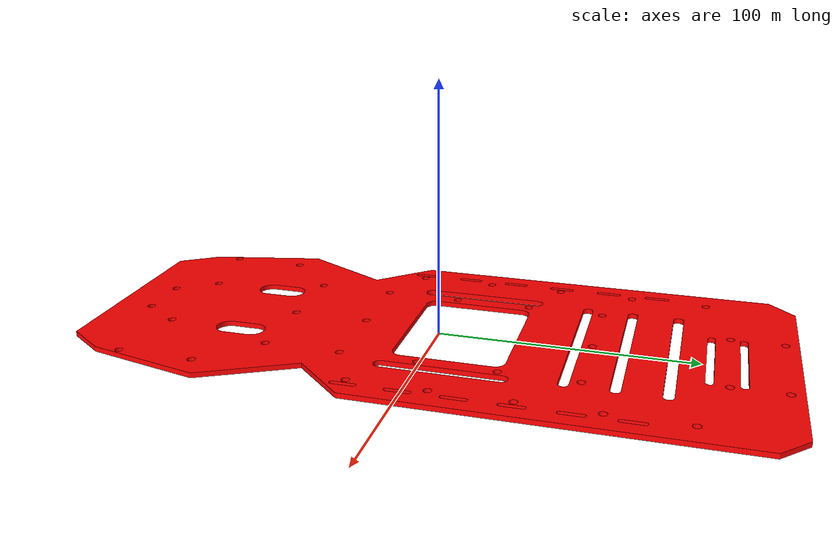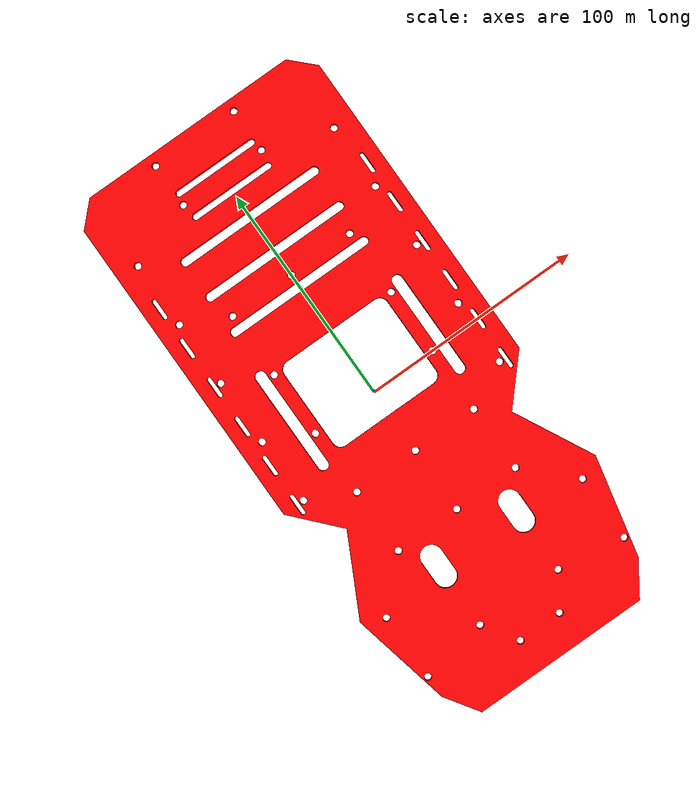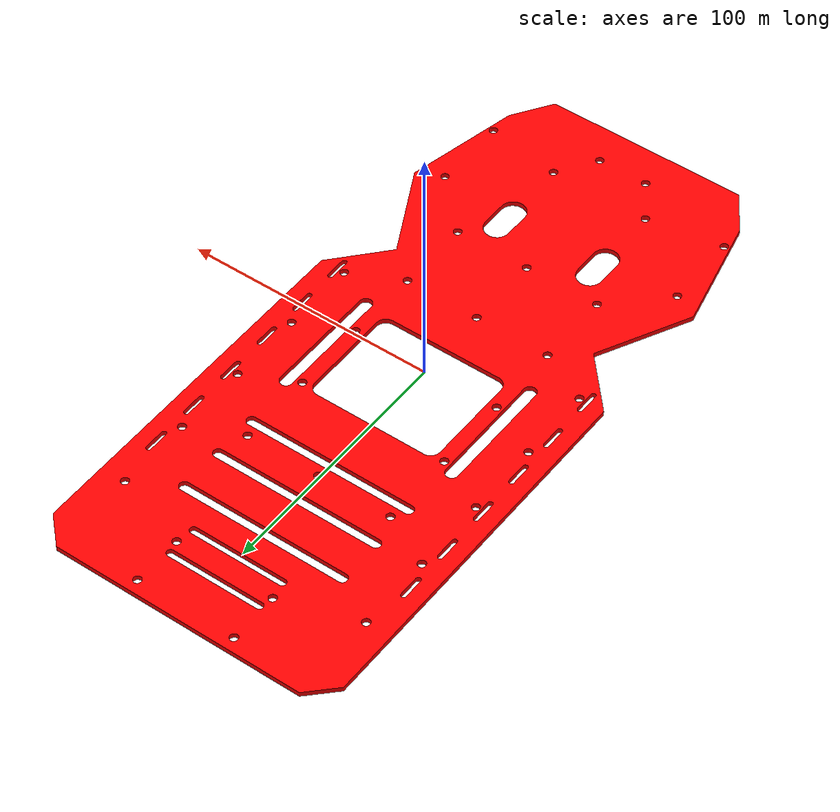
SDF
<?xml version="1.0" ?>
<sdf version="1.7">
  <model name="ackermann_robot">
    <link name="base_link"/>
    <link name="chassis_link">
      <inertial>
        <pose>0 0 0.0385 0 0 0</pose>
        <mass>0.126</mass>
        <inertia>
          <ixx>0.002</ixx>
          <ixy>0</ixy>
          <ixz>0</ixz>
          <iyy>0.002</iyy>
          <iyz>0</iyz>
          <izz>0.002</izz>
        </inertia>
      </inertial>
      <visual name="chassis_visual">
        <pose>-0.135 -0.06025 0.0385 0 0 0</pose>
        <geometry>
          <mesh>
            <uri>/home/mohana/robot_ws/install/ackermann_robot/share/ackermann_robot/meshes/chassis_visual.dae</uri>
            <scale>1 1 1</scale>
          </mesh>
        </geometry>
        <material>
          <ambient>1.0 0.0 0.0 1</ambient>
          <diffuse>1.0 0.0 0.0 1</diffuse>
        </material>
      </visual>
      <collision name="chassis_collision">
        <pose>0 0 0.0385 0 0 0</pose>
        <geometry>
          <box>
            <size>0.27 0.1205 0.002</size>
          </box>
        </geometry>
      </collision>
    </link>
    <joint name="base_to_chassis" type="fixed">
      <parent>base_link</parent>
      <child>chassis_link</child>
    </joint>
    <link name="rear_left_wheel_link">
      <inertial>
        <mass>0.05</mass>
        <inertia>
          <pose>0 0 0</pose>
          <ixx>3e-5</ixx>
          <ixy>0</ixy>
          <ixz>0</ixz>
          <iyy>3e-5</iyy>
          <iyz>0</iyz>
          <izz>3e-5</izz>
        </inertia>
      </inertial>
      <visual name="rear_left_wheel_visual">
        <pose>0 0 0 1.5708 0 0</pose>
        <geometry>
          <cylinder>
            <length>0.03</length>
            <radius>0.0375</radius>
          </cylinder>
        </geometry>
        <material>
          <ambient>0.05 0.05 0.05 1</ambient>
          <diffuse>0.05 0.05 0.05 1</diffuse>
        </material>
      </visual>
      <collision name="rear_left_wheel_collision">
        <pose>0 0 0 1.5708 0 0</pose>
        <geometry>
          <cylinder>
            <length>0.03</length>
            <radius>0.0375</radius>
          </cylinder>
        </geometry>
      </collision>
    </link>
    <joint name="rear_left_wheel_joint" type="revolute">
      <parent>chassis_link</parent>
      <child>rear_left_wheel_link</child>
      <pose>-0.095 0.0835 0.0375 0 0 0</pose>
      <axis>
        <xyz>0 1 0</xyz>
      </axis>
    </joint>
    <link name="rear_right_wheel_link">
      <inertial>
        <mass>0.05</mass>
        <inertia>
          <ixx>3e-5</ixx>
          <ixy>0</ixy>
          <ixz>0</ixz>
          <iyy>3e-5</iyy>
          <iyz>0</iyz>
          <izz>3e-5</izz>
        </inertia>
      </inertial>
      <visual name="rear_right_wheel_visual">
        <pose>0 0 0 1.5708 0 0</pose>
        <geometry>
          <cylinder>
            <length>0.03</length>
            <radius>0.0375</radius>
          </cylinder>
        </geometry>
        <material>
          <ambient>0.05 0.05 0.05 1</ambient>
          <diffuse>0.05 0.05 0.05 1</diffuse>
        </material>
      </visual>
      <collision name="rear_right_wheel_collision">
        <pose>0 0 0 1.5708 0 0</pose>
        <geometry>
          <cylinder>
            <length>0.03</length>
            <radius>0.0375</radius>
          </cylinder>
        </geometry>
      </collision>
    </link>
    <joint name="rear_right_wheel_joint" type="revolute">
      <parent>chassis_link</parent>
      <child>rear_right_wheel_link</child>
      <pose>-0.095 -0.0835 0.0375 0 0 0</pose>
      <axis>
        <xyz>0 1 0</xyz>
      </axis>
    </joint>
    <link name="front_left_steer_link">
      <inertial>
        <mass>0.01</mass>
        <inertia>
          <ixx>1e-5</ixx>
          <ixy>0</ixy>
          <ixz>0</ixz>
          <iyy>1e-5</iyy>
          <iyz>0</iyz>
          <izz>1e-5</izz>
        </inertia>
      </inertial>
    </link>
    <joint name="front_left_steer_joint" type="revolute">
      <parent>chassis_link</parent>
      <child>front_left_steer_link</child>
      <pose>0.095 0.0835 0.0375 0 0 0</pose>
      <axis>
        <xyz>0 0 1</xyz>
        <limit>
          <lower>-0.6</lower>
          <upper>0.6</upper>
          <effort>10</effort>
          <velocity>2</velocity>
        </limit>
      </axis>
    </joint>
    <link name="front_left_wheel_link">
      <inertial>
        <mass>0.05</mass>
        <inertia>
          <ixx>3e-5</ixx>
          <ixy>0</ixy>
          <ixz>0</ixz>
          <iyy>3e-5</iyy>
          <iyz>0</iyz>
          <izz>3e-5</izz>
        </inertia>
      </inertial>
      <visual name="front_left_wheel_visual">
        <pose>0 0 0 1.5708 0 0</pose>
        <geometry>
          <cylinder>
            <length>0.03</length>
            <radius>0.0375</radius>
          </cylinder>
        </geometry>
        <material>
          <ambient>0.05 0.05 0.05 1</ambient>
          <diffuse>0.05 0.05 0.05 1</diffuse>
        </material>
      </visual>
      <collision name="front_left_wheel_collision">
        <pose>0 0 0 1.5708 0 0</pose>
        <geometry>
          <cylinder>
            <length>0.03</length>
            <radius>0.0375</radius>
          </cylinder>
        </geometry>
      </collision>
    </link>
    <joint name="front_left_wheel_joint" type="revolute">
      <parent>front_left_steer_link</parent>
      <child>front_left_wheel_link</child>
      <axis>
        <xyz>0 1 0</xyz>
      </axis>
    </joint>
    <link name="front_right_steer_link">
      <inertial>
        <mass>0.01</mass>
        <inertia>
          <ixx>1e-5</ixx>
          <ixy>0</ixy>
          <ixz>0</ixz>
          <iyy>1e-5</iyy>
          <iyz>0</iyz>
          <izz>1e-5</izz>
        </inertia>
      </inertial>
    </link>
    <joint name="front_right_steer_joint" type="revolute">
      <parent>chassis_link</parent>
      <child>front_right_steer_link</child>
      <pose>0.095 -0.0835 0.0375 0 0 0</pose>
      <axis>
        <xyz>0 0 1</xyz>
        <limit>
          <lower>-0.6</lower>
          <upper>0.6</upper>
          <effort>10</effort>
          <velocity>2</velocity>
        </limit>
      </axis>
    </joint>
    <link name="front_right_wheel_link">
      <inertial>
        <mass>0.05</mass>
        <inertia>
          <ixx>3e-5</ixx>
          <ixy>0</ixy>
          <ixz>0</ixz>
          <iyy>3e-5</iyy>
          <iyz>0</iyz>
          <izz>3e-5</izz>
        </inertia>
      </inertial>
      <visual name="front_right_wheel_visual">
        <pose>0 0 0 1.5708 0 0</pose>
        <geometry>
          <cylinder>
            <length>0.03</length>
            <radius>0.0375</radius>
          </cylinder>
        </geometry>
        <material>
          <ambient>0.05 0.05 0.05 1</ambient>
          <diffuse>0.05 0.05 0.05 1</diffuse>
        </material>
      </visual>
      <collision name="front_right_wheel_collision">
        <pose>0 0 0 1.5708 0 0</pose>
        <geometry>
          <cylinder>
            <length>0.03</length>
            <radius>0.0375</radius>
          </cylinder>
        </geometry>
      </collision>
    </link>
    <joint name="front_right_wheel_joint" type="revolute">
      <parent>front_right_steer_link</parent>
      <child>front_right_wheel_link</child>
      <axis>
        <xyz>0 1 0</xyz>
      </axis>
    </joint>
  </model>
</sdf>
